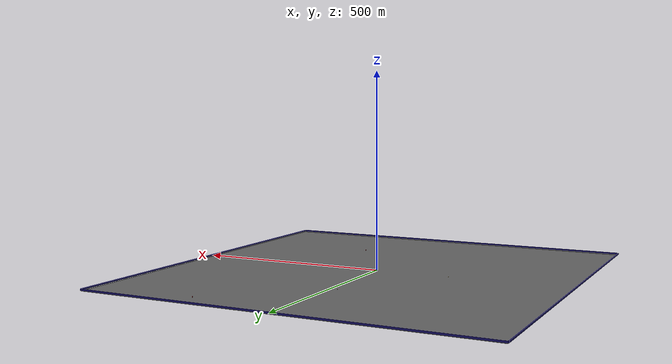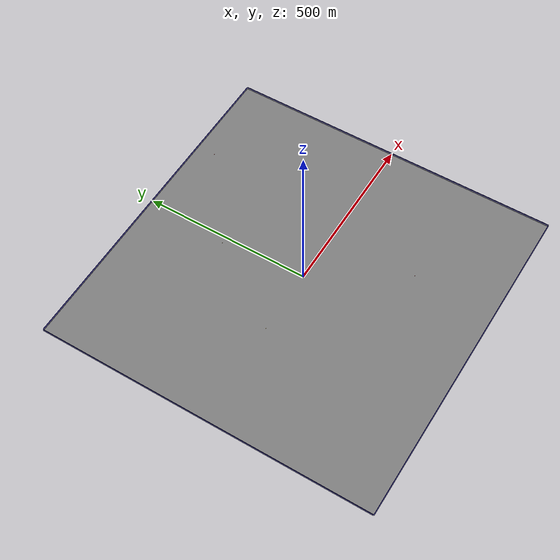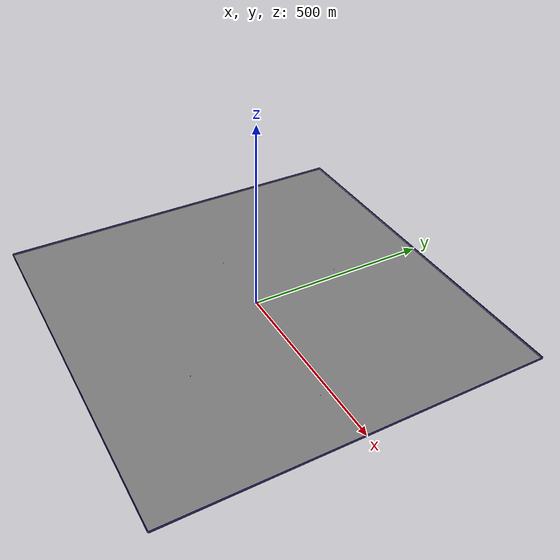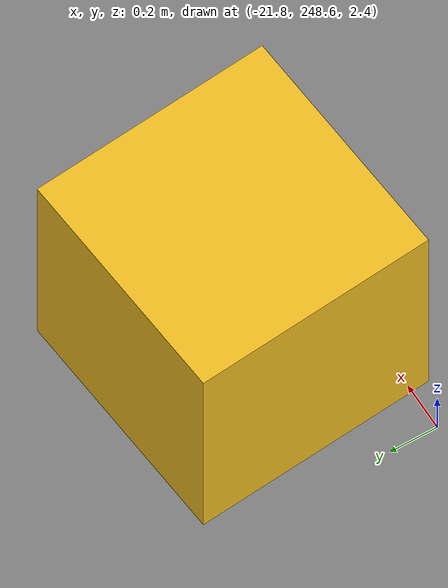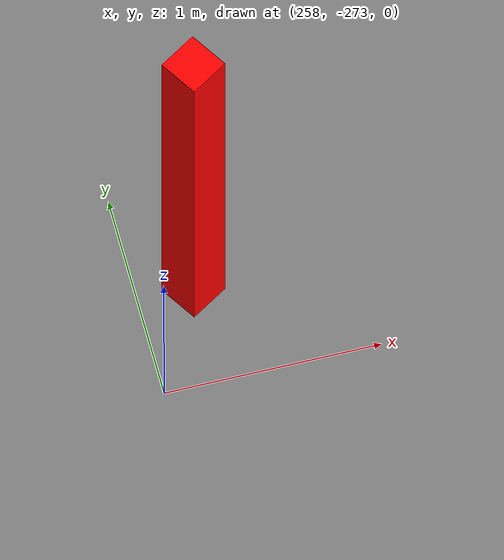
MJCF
<mujoco model="unnamed_model">
  <default>
    <default class="/" />
    <default class="border/" />
    <default class="border_1/" />
    <default class="border_2/" />
    <default class="border_3/" />
    <default class="agentplaceholder/" />
    <default class="placeholder_box/" />
    <default class="tree0/" />
    <default class="tree1/" />
    <default class="stone/" />
    <default class="stone_1/" />
  </default>
  <worldbody>
    <body name="border/">
      <body name="border/border" pos="0 501 2">
        <geom name="border/border_geom" class="border/" type="box" size="500 1 2" rgba="0.035000000000000003 0.016 0.28999999999999998 1" />
      </body>
    </body>
    <body name="border_1/">
      <body name="border_1/border" pos="0 -501 2">
        <geom name="border_1/border_geom" class="border_1/" type="box" size="500 1 2" rgba="0.035000000000000003 0.016 0.28999999999999998 1" />
      </body>
    </body>
    <body name="border_2/">
      <body name="border_2/border" pos="501 0 2">
        <geom name="border_2/border_geom" class="border_2/" type="box" size="1 500 2" rgba="0.035000000000000003 0.016 0.28999999999999998 1" />
      </body>
    </body>
    <body name="border_3/">
      <body name="border_3/border" pos="-501 0 2">
        <geom name="border_3/border_geom" class="border_3/" type="box" size="1 500 2" rgba="0.035000000000000003 0.016 0.28999999999999998 1" />
      </body>
    </body>
    <body euler="0 0 -85.132055076891007" name="agentplaceholder/">
      <joint name="agentplaceholder/boxagent_freeJoint/" class="/" type="free" />
      <body name="agentplaceholder/agentplaceholder" pos="-250 0 3" euler="0 0 0">
        <geom name="agentplaceholder/boxagent_geom" class="agentplaceholder/" type="box" size="0.5 0.5 0.5" rgba="0.94899999999999995 0.74509999999999998 0.1333 1" euler="0 0 0" />
      </body>
    </body>
    <body name="placeholder_box/">
      <body name="placeholder_box/placeholder_box" pos="-191.9153 -1.0314000000000192 0.5" euler="0 0 -61.712071742757828">
        <geom name="placeholder_box/box_geom" class="placeholder_box/" type="box" size="0.5 0.5 0.5" rgba="0.94899999999999995 0.74509999999999998 0.1333 1" euler="0 0 0" />
      </body>
    </body>
    <body name="tree0/">
      <body name="tree0/tree0" pos="258.25774999999999 -272.51990000000001 0.10000000000000001" euler="0 0 122.13204362171467">
        <geom name="tree0/tree_geom" class="tree0/" type="box" size="0.10000000000000001 0.10000000000000001 2" rgba="1 0 0 1" />
      </body>
    </body>
    <body name="tree1/">
      <body name="tree1/tree1" pos="232.28809999999999 444.15200000000004 0.10000000000000001" euler="0 0 163.66147134877178">
        <geom name="tree1/tree_geom" class="tree1/" type="box" size="0.10000000000000001 0.10000000000000001 2" rgba="1 0 0 1" />
      </body>
    </body>
    <body name="stone/">
      <body name="stone/stone" pos="160.1574 -259.14819999999997 0.10000000000000001" euler="0 0 165.22666024832893">
        <geom name="stone/stone_geom" class="stone/" type="box" size="0.10000000000000001 0.10000000000000001 2" rgba="1 0 0 1" />
      </body>
    </body>
    <body name="stone_1/">
      <body name="stone_1/stone" pos="353.11714999999998 -25.69380000000001 0.10000000000000001" euler="0 0 16.100020592425835">
        <geom name="stone_1/stone_geom" class="stone_1/" type="box" size="0.10000000000000001 0.10000000000000001 2" rgba="1 0 0 1" />
      </body>
    </body>
    <geom name="base_plane" class="/" type="plane" size="500 500 0.10000000000000001" />
  </worldbody>
</mujoco>
